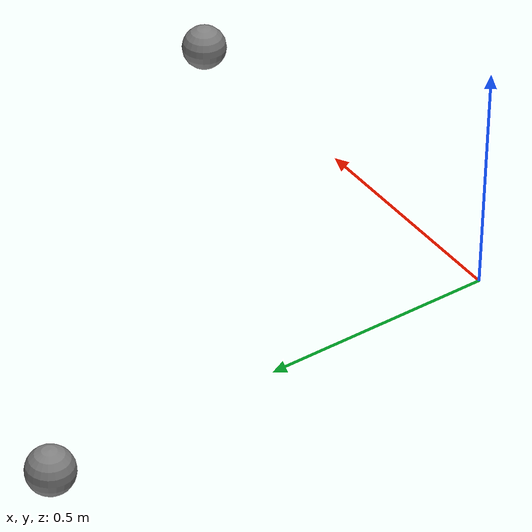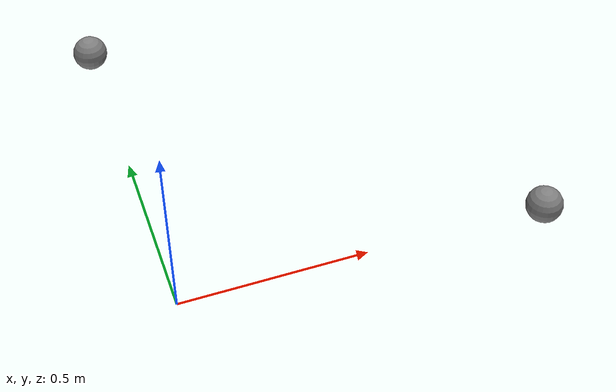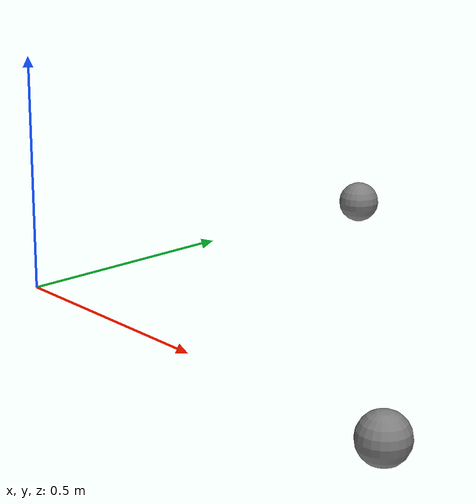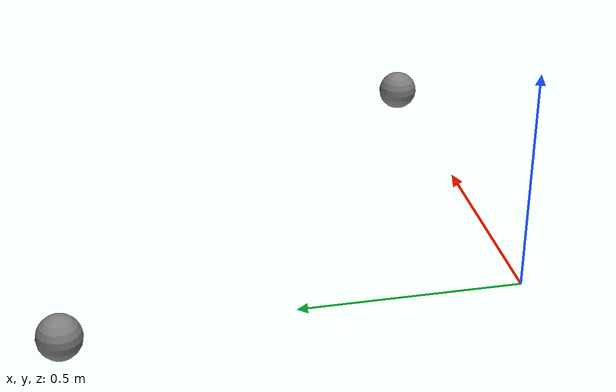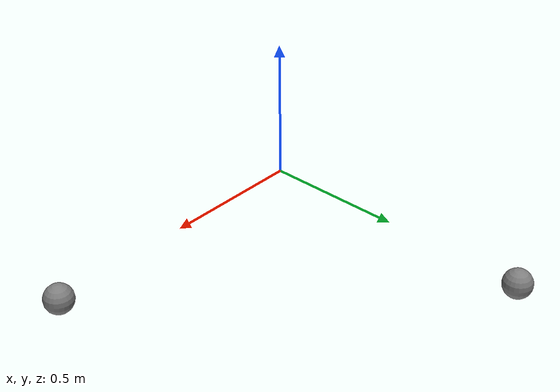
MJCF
<mujoco model="m">
                <worldbody>
                    <body name="ba" pos="1 0 0">
                        <geom name="g1" type="sphere" size="0.05" mass="1.0"/>
                    </body>
                    <body name="bb" pos="0 1 0">
                        <geom name="g2" type="sphere" size="0.05" mass="1.0"/>
                    </body>
                </worldbody>
                <equality>
                    <distance geom1="g1" geom2="g2"/>
                </equality>
            </mujoco>
